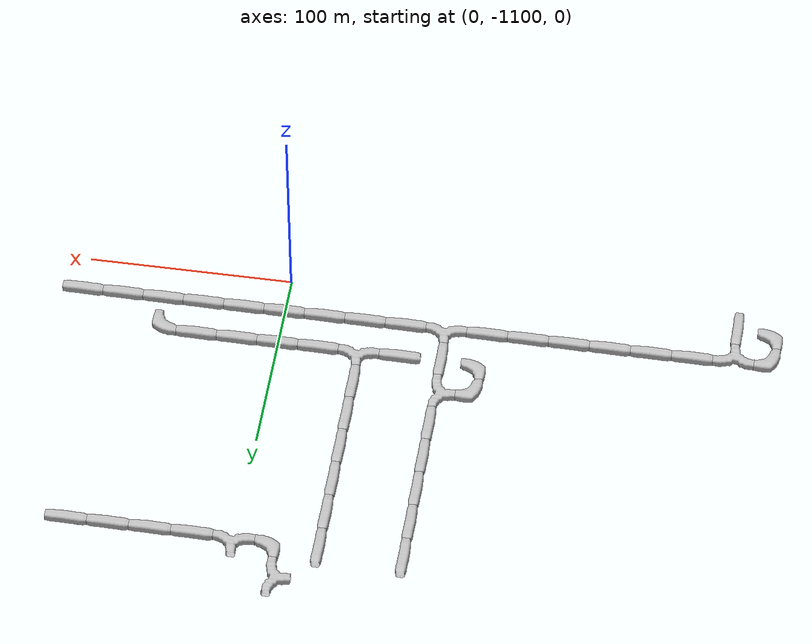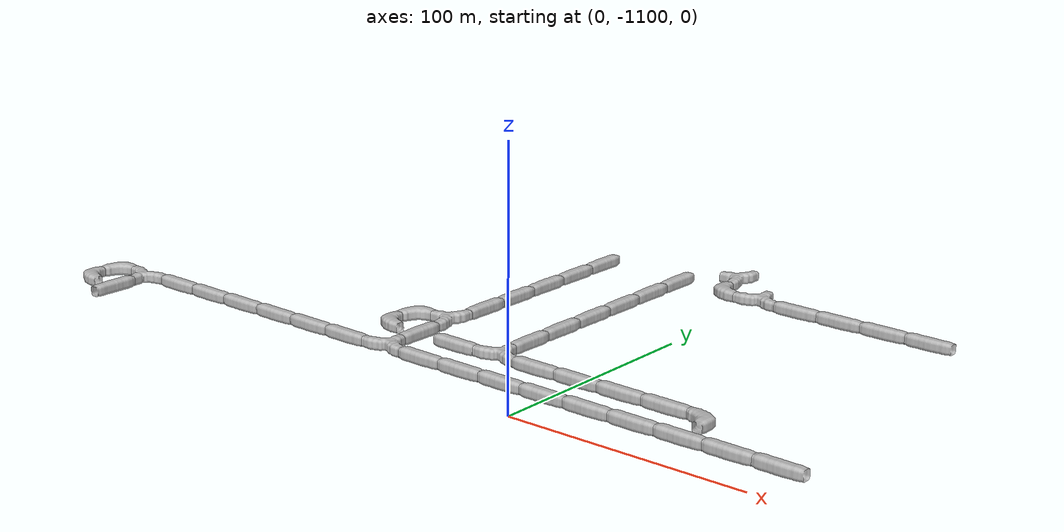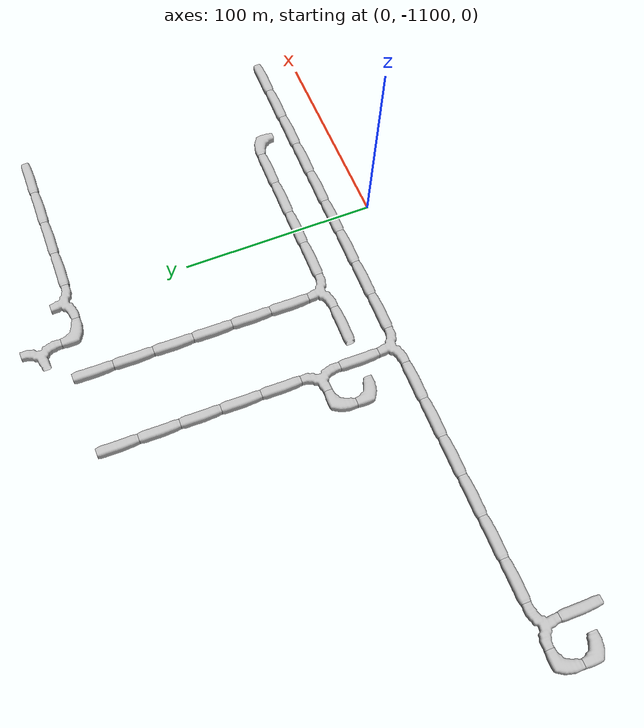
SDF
<sdf version="1.6">
 <world name="cave_16000_0">
  <include>
   <static>true</static>
   <name>cave_-1_-46</name>
   <pose>-20 -920 0 0 0 1.5707963267948966</pose>
   <uri>model://cave_3way_20m</uri>
  </include>
  <include>
   <static>true</static>
   <name>cave_-1_-47</name>
   <pose>-20 -940 0 0 0 0.0</pose>
   <uri>model://cave_L_20m</uri>
  </include>
  <include>
   <static>true</static>
   <name>cave_0_-47</name>
   <pose>0 -940 0 0 0 0.0</pose>
   <uri>model://cave_3way_20m</uri>
  </include>
  <include>
   <static>true</static>
   <name>cave_1_-47</name>
   <pose>20 -940 0 0 0 1.5707963267948966</pose>
   <uri>model://cave_straight_20m</uri>
  </include>
  <include>
   <static>true</static>
   <name>cave_2_-47</name>
   <pose>40 -940 0 0 0 1.5707963267948966</pose>
   <uri>model://cave_straight_20m</uri>
  </include>
  <include>
   <static>true</static>
   <name>cave_3_-47</name>
   <pose>60 -940 0 0 0 1.5707963267948966</pose>
   <uri>model://cave_straight_20m</uri>
  </include>
  <include>
   <static>true</static>
   <name>cave_4_-47</name>
   <pose>80 -940 0 0 0 1.5707963267948966</pose>
   <uri>model://cave_straight_20m</uri>
  </include>
  <include>
   <static>true</static>
   <name>cave_-2_-47</name>
   <pose>-40 -940 0 0 0 0.0</pose>
   <uri>model://cave_straight_20m</uri>
  </include>
  <include>
   <static>true</static>
   <name>cave_-2_-48</name>
   <pose>-40 -960 0 0 0 0.0</pose>
   <uri>model://cave_straight_20m</uri>
  </include>
  <include>
   <static>true</static>
   <name>cave_-2_-49</name>
   <pose>-40 -980 0 0 0 0.0</pose>
   <uri>model://cave_straight_20m</uri>
  </include>
  <include>
   <static>true</static>
   <name>cave_-2_-50</name>
   <pose>-40 -1000 0 0 0 0.0</pose>
   <uri>model://cave_straight_20m</uri>
  </include>
  <include>
   <static>true</static>
   <name>cave_-2_-51</name>
   <pose>-40 -1020 0 0 0 0.0</pose>
   <uri>model://cave_straight_20m</uri>
  </include>
  <include>
   <static>true</static>
   <name>cave_-2_-52</name>
   <pose>-40 -1040 0 0 0 0.0</pose>
   <uri>model://cave_straight_20m</uri>
  </include>
  <include>
   <static>true</static>
   <name>cave_-2_-53</name>
   <pose>-40 -1060 0 0 0 0.0</pose>
   <uri>model://cave_3way_20m</uri>
  </include>
  <include>
   <static>true</static>
   <name>cave_-1_-53</name>
   <pose>-20 -1060 0 0 0 1.5707963267948966</pose>
   <uri>model://cave_straight_20m</uri>
  </include>
  <include>
   <static>true</static>
   <name>cave_0_-53</name>
   <pose>0 -1060 0 0 0 1.5707963267948966</pose>
   <uri>model://cave_straight_20m</uri>
  </include>
  <include>
   <static>true</static>
   <name>cave_1_-53</name>
   <pose>20 -1060 0 0 0 1.5707963267948966</pose>
   <uri>model://cave_straight_20m</uri>
  </include>
  <include>
   <static>true</static>
   <name>cave_2_-53</name>
   <pose>40 -1060 0 0 0 1.5707963267948966</pose>
   <uri>model://cave_straight_20m</uri>
  </include>
  <include>
   <static>true</static>
   <name>cave_3_-53</name>
   <pose>60 -1060 0 0 0 3.141592653589793</pose>
   <uri>model://cave_L_20m</uri>
  </include>
  <include>
   <static>true</static>
   <name>cave_-3_-53</name>
   <pose>-60 -1060 0 0 0 1.5707963267948966</pose>
   <uri>model://cave_straight_20m</uri>
  </include>
  <include>
   <static>true</static>
   <name>cave_-4_-47</name>
   <pose>-80 -940 0 0 0 0.0</pose>
   <uri>model://cave_straight_20m</uri>
  </include>
  <include>
   <static>true</static>
   <name>cave_-4_-48</name>
   <pose>-80 -960 0 0 0 0.0</pose>
   <uri>model://cave_straight_20m</uri>
  </include>
  <include>
   <static>true</static>
   <name>cave_-4_-49</name>
   <pose>-80 -980 0 0 0 0.0</pose>
   <uri>model://cave_straight_20m</uri>
  </include>
  <include>
   <static>true</static>
   <name>cave_-4_-50</name>
   <pose>-80 -1000 0 0 0 0.0</pose>
   <uri>model://cave_straight_20m</uri>
  </include>
  <include>
   <static>true</static>
   <name>cave_-4_-51</name>
   <pose>-80 -1020 0 0 0 0.0</pose>
   <uri>model://cave_straight_20m</uri>
  </include>
  <include>
   <static>true</static>
   <name>cave_-4_-52</name>
   <pose>-80 -1040 0 0 0 1.5707963267948966</pose>
   <uri>model://cave_3way_20m</uri>
  </include>
  <include>
   <static>true</static>
   <name>cave_-4_-53</name>
   <pose>-80 -1060 0 0 0 0.0</pose>
   <uri>model://cave_straight_20m</uri>
  </include>
  <include>
   <static>true</static>
   <name>cave_-4_-54</name>
   <pose>-80 -1080 0 0 0 0.0</pose>
   <uri>model://cave_3way_20m</uri>
  </include>
  <include>
   <static>true</static>
   <name>cave_-3_-54</name>
   <pose>-60 -1080 0 0 0 1.5707963267948966</pose>
   <uri>model://cave_straight_20m</uri>
  </include>
  <include>
   <static>true</static>
   <name>cave_-2_-54</name>
   <pose>-40 -1080 0 0 0 1.5707963267948966</pose>
   <uri>model://cave_straight_20m</uri>
  </include>
  <include>
   <static>true</static>
   <name>cave_-1_-54</name>
   <pose>-20 -1080 0 0 0 1.5707963267948966</pose>
   <uri>model://cave_straight_20m</uri>
  </include>
  <include>
   <static>true</static>
   <name>cave_0_-54</name>
   <pose>0 -1080 0 0 0 1.5707963267948966</pose>
   <uri>model://cave_straight_20m</uri>
  </include>
  <include>
   <static>true</static>
   <name>cave_1_-54</name>
   <pose>20 -1080 0 0 0 1.5707963267948966</pose>
   <uri>model://cave_straight_20m</uri>
  </include>
  <include>
   <static>true</static>
   <name>cave_2_-54</name>
   <pose>40 -1080 0 0 0 1.5707963267948966</pose>
   <uri>model://cave_straight_20m</uri>
  </include>
  <include>
   <static>true</static>
   <name>cave_3_-54</name>
   <pose>60 -1080 0 0 0 1.5707963267948966</pose>
   <uri>model://cave_straight_20m</uri>
  </include>
  <include>
   <static>true</static>
   <name>cave_4_-54</name>
   <pose>80 -1080 0 0 0 1.5707963267948966</pose>
   <uri>model://cave_straight_20m</uri>
  </include>
  <include>
   <static>true</static>
   <name>cave_5_-54</name>
   <pose>100 -1080 0 0 0 1.5707963267948966</pose>
   <uri>model://cave_straight_20m</uri>
  </include>
  <include>
   <static>true</static>
   <name>cave_-5_-54</name>
   <pose>-100 -1080 0 0 0 1.5707963267948966</pose>
   <uri>model://cave_straight_20m</uri>
  </include>
  <include>
   <static>true</static>
   <name>cave_-6_-54</name>
   <pose>-120 -1080 0 0 0 1.5707963267948966</pose>
   <uri>model://cave_straight_20m</uri>
  </include>
  <include>
   <static>true</static>
   <name>cave_-7_-54</name>
   <pose>-140 -1080 0 0 0 1.5707963267948966</pose>
   <uri>model://cave_straight_20m</uri>
  </include>
  <include>
   <static>true</static>
   <name>cave_-8_-54</name>
   <pose>-160 -1080 0 0 0 1.5707963267948966</pose>
   <uri>model://cave_straight_20m</uri>
  </include>
  <include>
   <static>true</static>
   <name>cave_-9_-54</name>
   <pose>-180 -1080 0 0 0 1.5707963267948966</pose>
   <uri>model://cave_straight_20m</uri>
  </include>
  <include>
   <static>true</static>
   <name>cave_-10_-54</name>
   <pose>-200 -1080 0 0 0 1.5707963267948966</pose>
   <uri>model://cave_straight_20m</uri>
  </include>
  <include>
   <static>true</static>
   <name>cave_-11_-54</name>
   <pose>-220 -1080 0 0 0 3.141592653589793</pose>
   <uri>model://cave_3way_20m</uri>
  </include>
  <include>
   <static>true</static>
   <name>cave_-11_-55</name>
   <pose>-220 -1100 0 0 0 0.0</pose>
   <uri>model://cave_straight_20m</uri>
  </include>
  <include>
   <static>true</static>
   <name>cave_-12_-54</name>
   <pose>-240 -1080 0 0 0 -1.5707963267948966</pose>
   <uri>model://cave_L_20m</uri>
  </include>
  <include>
   <static>true</static>
   <name>cave_-12_-55</name>
   <pose>-240 -1100 0 0 0 0.0</pose>
   <uri>model://cave_L_20m</uri>
  </include>
  <include>
   <static>true</static>
   <name>cave_-5_-52</name>
   <pose>-100 -1040 0 0 0 -1.5707963267948966</pose>
   <uri>model://cave_L_20m</uri>
  </include>
  <include>
   <static>true</static>
   <name>cave_-5_-53</name>
   <pose>-100 -1060 0 0 0 0.0</pose>
   <uri>model://cave_L_20m</uri>
  </include>
 </world>
</sdf>
